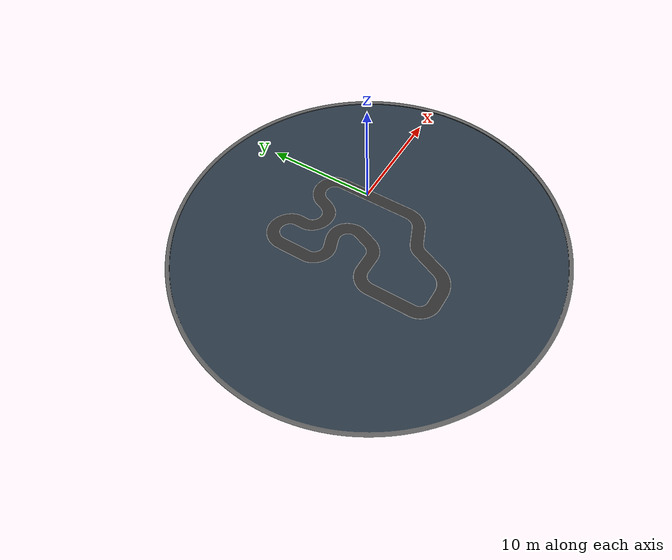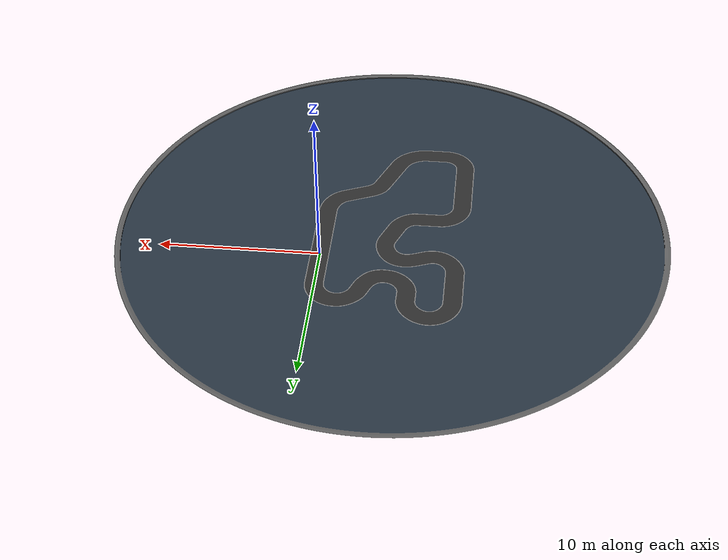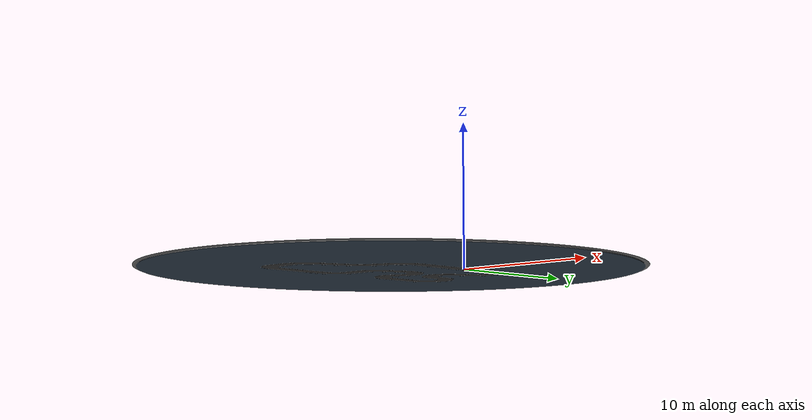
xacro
<?xml version='1.0'?>
<robot name="road" xmlns:xacro="http://www.ros.org/wiki/xacro">
   <xacro:property name="road_scale" value="0.05" />

  	<link name="base_link">
		<visual>
        <origin xyz="0 0 0" rpy="0 0 0" />
      <geometry>
        <mesh filename="package://inventacao_car_test/meshes/unityAssetRoad.dae" scale="${road_scale} ${road_scale} ${road_scale}"/>
      </geometry>
    </visual>

    <!-- Required to maintain the 3d model above the ground (when dynamic model) -->
    <collision>
        <origin xyz="0 0 0" rpy="0 0 0"/>
        <geometry>
          <mesh filename="package://inventacao_car_test/meshes/unityAssetRoad.dae" scale="${road_scale} ${road_scale} ${road_scale}"/>
        </geometry>
      </collision>

    <!-- 3d model won't show up without inertial set-->
    <inertial>
        <origin xyz="0 0 0" rpy="0 0 0" />
        <inertia ixx="1.0" ixy="0" ixz="0"
                 iyy="1.0" iyz="0"
                 izz="1.0" />
        <mass value="100" />
      </inertial>
	</link>

  <!-- Set model as kinematic -->
  <gazebo>
      <static>true</static>
  </gazebo>

</robot>
